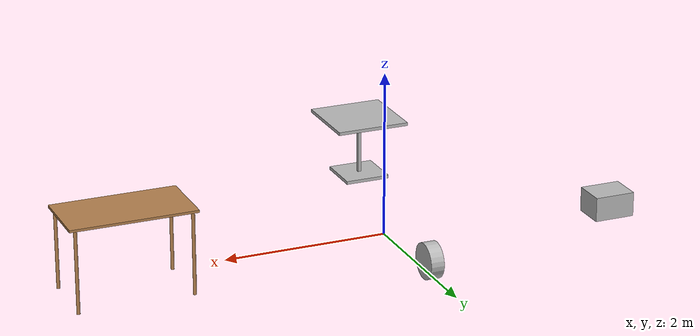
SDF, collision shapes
<?xml version='1.0'?>
<sdf version='1.6'>
  <model name='newworld4m'>
    <model name='cafe_table'>
      <static>1</static>
      <link name='link'>
        <collision name='surface'>
          <pose frame=''>0 0 0.755 0 -0 0</pose>
          <geometry>
            <box>
              <size>0.913 0.913 0.04</size>
            </box>
          </geometry>
        </collision>
        <collision name='column'>
          <pose frame=''>0 0 0.37 0 -0 0</pose>
          <geometry>
            <box>
              <size>0.042 0.042 0.74</size>
            </box>
          </geometry>
        </collision>
        <collision name='base'>
          <pose frame=''>0 0 0.02 0 -0 0</pose>
          <geometry>
            <box>
              <size>0.56 0.56 0.04</size>
            </box>
          </geometry>
        </collision>
        <visual name='visual'>
          <geometry>
            <mesh>
              <uri>model://cafe_table/meshes/cafe_table.dae</uri>
            </mesh>
          </geometry>
        </visual>
      </link>
      <pose frame=''>-0.524622 -1.97743 -0.0375 0 -0 0</pose>
    </model>
    <model name='car_wheel'>
      <link name='link'>
        <pose frame=''>0 0 0.21682 0 1.5707 0</pose>
        <inertial>
          <mass>12</mass>
          <inertia>
            <ixx>0.167005</ixx>
            <ixy>0</ixy>
            <ixz>0</ixz>
            <iyy>0.167005</iyy>
            <iyz>0</iyz>
            <izz>0.282065</izz>
          </inertia>
        </inertial>
        <collision name='collision'>
          <geometry>
            <cylinder>
              <radius>0.21682</radius>
              <length>0.16116</length>
            </cylinder>
          </geometry>
          <surface>
            <friction>
              <ode>
                <mu>1</mu>
                <mu2>1</mu2>
                <fdir1>0 0 1</fdir1>
                <slip1>0</slip1>
                <slip2>0</slip2>
              </ode>
            </friction>
            <contact>
              <ode>
                <min_depth>0.005</min_depth>
                <kp>1e+08</kp>
              </ode>
            </contact>
          </surface>
        </collision>
        <visual name='visual'>
          <pose frame=''>0 0 -0.08058 0 -0 0</pose>
          <geometry>
            <mesh>
              <uri>model://car_wheel/meshes/car_wheel.dae</uri>
            </mesh>
          </geometry>
        </visual>
      </link>
      <pose frame=''>0.002234 1.29781 -0.0375 0 -0 0</pose>
    </model>
    <model name='cardboard_box'>
      <pose frame=''>-2.77049 0.377048 0.1125 0 -0 0</pose>
      <link name='link'>
        <inertial>
          <mass>2</mass>
          <inertia>
            <ixx>0.0416667</ixx>
            <ixy>0</ixy>
            <ixz>0</ixz>
            <iyy>0.0566667</iyy>
            <iyz>0</iyz>
            <izz>0.0683333</izz>
          </inertia>
        </inertial>
        <collision name='collision'>
          <geometry>
            <box>
              <size>0.5 0.4 0.3</size>
            </box>
          </geometry>
          <surface>
            <friction>
              <ode>
                <mu>1</mu>
                <mu2>1</mu2>
              </ode>
            </friction>
            <contact>
              <ode>
                <kp>1e+07</kp>
                <kd>1</kd>
                <min_depth>0.001</min_depth>
                <max_vel>0.1</max_vel>
              </ode>
            </contact>
          </surface>
        </collision>
        <visual name='visual'>
          <pose frame=''>0 0 -0.15 0 -0 0</pose>
          <geometry>
            <mesh>
              <uri>model://cardboard_box/meshes/cardboard_box.dae</uri>
              <scale>1.25932 1.00745 0.755591</scale>
            </mesh>
          </geometry>
        </visual>
      </link>
    </model>
    <model name='table'>
      <static>1</static>
      <link name='link'>
        <collision name='surface'>
          <pose frame=''>0 0 1 0 -0 0</pose>
          <geometry>
            <box>
              <size>1.5 0.8 0.03</size>
            </box>
          </geometry>
          <surface>
            <friction>
              <ode>
                <mu>0.6</mu>
                <mu2>0.6</mu2>
              </ode>
            </friction>
          </surface>
        </collision>
        <visual name='visual1'>
          <pose frame=''>0 0 1 0 -0 0</pose>
          <geometry>
            <box>
              <size>1.5 0.8 0.03</size>
            </box>
          </geometry>
          <material>
            <script>
              <uri>file://media/materials/scripts/gazebo.material</uri>
              <name>Gazebo/Wood</name>
            </script>
          </material>
        </visual>
        <collision name='front_left_leg'>
          <pose frame=''>0.68 0.38 0.5 0 -0 0</pose>
          <geometry>
            <cylinder>
              <radius>0.02</radius>
              <length>1</length>
            </cylinder>
          </geometry>
        </collision>
        <visual name='front_left_leg'>
          <pose frame=''>0.68 0.38 0.5 0 -0 0</pose>
          <geometry>
            <cylinder>
              <radius>0.02</radius>
              <length>1</length>
            </cylinder>
          </geometry>
          <material>
            <script>
              <uri>file://media/materials/scripts/gazebo.material</uri>
              <name>Gazebo/Grey</name>
            </script>
          </material>
        </visual>
        <collision name='front_right_leg'>
          <pose frame=''>0.68 -0.38 0.5 0 -0 0</pose>
          <geometry>
            <cylinder>
              <radius>0.02</radius>
              <length>1</length>
            </cylinder>
          </geometry>
        </collision>
        <visual name='front_right_leg'>
          <pose frame=''>0.68 -0.38 0.5 0 -0 0</pose>
          <geometry>
            <cylinder>
              <radius>0.02</radius>
              <length>1</length>
            </cylinder>
          </geometry>
          <material>
            <script>
              <uri>file://media/materials/scripts/gazebo.material</uri>
              <name>Gazebo/Grey</name>
            </script>
          </material>
        </visual>
        <collision name='back_right_leg'>
          <pose frame=''>-0.68 -0.38 0.5 0 -0 0</pose>
          <geometry>
            <cylinder>
              <radius>0.02</radius>
              <length>1</length>
            </cylinder>
          </geometry>
        </collision>
        <visual name='back_right_leg'>
          <pose frame=''>-0.68 -0.38 0.5 0 -0 0</pose>
          <geometry>
            <cylinder>
              <radius>0.02</radius>
              <length>1</length>
            </cylinder>
          </geometry>
          <material>
            <script>
              <uri>file://media/materials/scripts/gazebo.material</uri>
              <name>Gazebo/Grey</name>
            </script>
          </material>
        </visual>
        <collision name='back_left_leg'>
          <pose frame=''>-0.68 0.38 0.5 0 -0 0</pose>
          <geometry>
            <cylinder>
              <radius>0.02</radius>
              <length>1</length>
            </cylinder>
          </geometry>
        </collision>
        <visual name='back_left_leg'>
          <pose frame=''>-0.68 0.38 0.5 0 -0 0</pose>
          <geometry>
            <cylinder>
              <radius>0.02</radius>
              <length>1</length>
            </cylinder>
          </geometry>
          <material>
            <script>
              <uri>file://media/materials/scripts/gazebo.material</uri>
              <name>Gazebo/Grey</name>
            </script>
          </material>
        </visual>
      </link>
      <pose frame=''>3.29288 0.302566 -0.0375 0 -0 0</pose>
    </model>
    <static>0</static>
    <allow_auto_disable>1</allow_auto_disable>
  </model>
</sdf>
